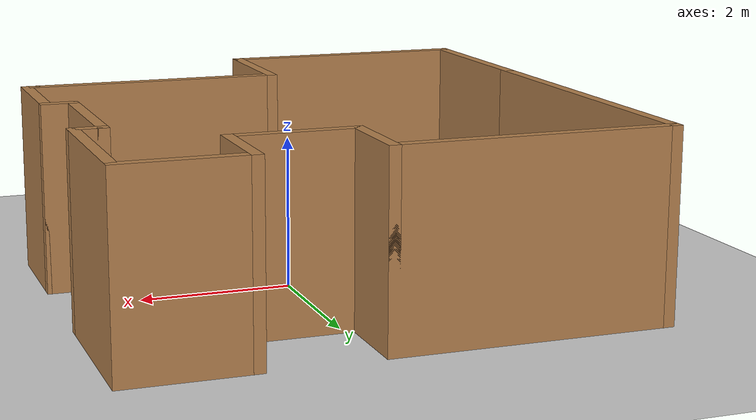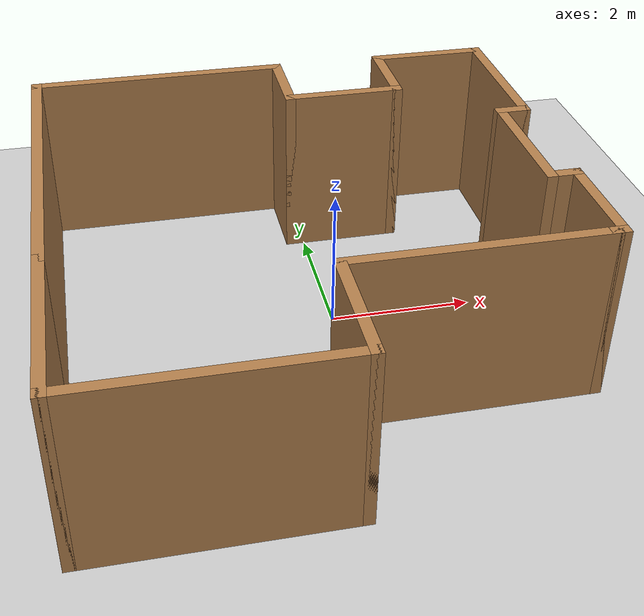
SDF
<sdf version="1.7">
 <world name="default">
  <light name="sun" type="directional">
   <pose>0 0 10 0 -0 0</pose>
   <diffuse>0.8 0.8 0.8 1</diffuse>
   <specular>0.2 0.2 0.2 1</specular>
   <attenuation>
    <range>1000</range>
    <constant>0.9</constant>
    <linear>0.01</linear>
    <quadratic>0.001</quadratic>
   </attenuation>
   <direction>-0.5 0.1 -0.9</direction>
   <spot><inner_angle>0</inner_angle><outer_angle>0</outer_angle><falloff>0</falloff></spot>
  </light>
  <model name="ground_plane">
   <static>1</static>
   <link name="link">
    <collision name="collision">
     <geometry><plane><normal>0 0 1</normal><size>100 100</size></plane></geometry>
     <surface><friction><ode><mu>100</mu><mu2>50</mu2></ode></friction></surface>
    </collision>
    <visual name="visual">
     <cast_shadows>0</cast_shadows>
     <geometry><plane><normal>0 0 1</normal><size>100 100</size></plane></geometry>
     <material>
      <script><uri>file://media/materials/scripts/gazebo.material</uri><name>Gazebo/Grey</name></script>
     </material>
    </visual>
   </link>
  </model>
  <gravity>0 0 -9.8</gravity>
  <magnetic_field>6e-06 2.3e-05 -4.2e-05</magnetic_field>
  <atmosphere type="adiabatic"/>
  <physics type="ode">
   <max_step_size>0.001</max_step_size>
   <real_time_factor>1</real_time_factor>
   <real_time_update_rate>1000</real_time_update_rate>
  </physics>
  <scene><ambient>0.4 0.4 0.4 1</ambient><background>0.7 0.7 0.7 1</background><shadows>1</shadows></scene>
  <spherical_coordinates>
   <surface_model>EARTH_WGS84</surface_model>
   <latitude_deg>0</latitude_deg>
   <longitude_deg>0</longitude_deg>
   <elevation>0</elevation>
   <heading_deg>0</heading_deg>
  </spherical_coordinates>
  <model name="small_building">
   <pose>-0.39971 -0.275303 0 0 -0 0</pose>
   <link name="Wall_0">
    <collision name="Wall_0_Collision">
     <geometry><box><size>4.75 0.15 2.5</size></box></geometry>
     <pose>0 0 1.25 0 -0 0</pose>
    </collision>
    <visual name="Wall_0_Visual">
     <pose>0 0 1.25 0 -0 0</pose>
     <geometry><box><size>4.75 0.15 2.5</size></box></geometry>
     <material>
      <script><uri>file://media/materials/scripts/gazebo.material</uri><name>Gazebo/Wood</name></script>
      <ambient>1 1 1 1</ambient>
     </material>
     <meta><layer>0</layer></meta>
    </visual>
    <pose>-3.4 1.175 0 0 -0 1.5708</pose>
   </link>
   <link name="Wall_1">
    <collision name="Wall_1_Collision">
     <geometry><box><size>3.75 0.15 2.5</size></box></geometry>
     <pose>0 0 1.25 0 -0 0</pose>
    </collision>
    <visual name="Wall_1_Visual">
     <pose>0 0 1.25 0 -0 0</pose>
     <geometry><box><size>3.75 0.15 2.5</size></box></geometry>
     <material>
      <script><uri>file://media/materials/scripts/gazebo.material</uri><name>Gazebo/Wood</name></script>
      <ambient>1 1 1 1</ambient>
     </material>
     <meta><layer>0</layer></meta>
    </visual>
    <pose>-1.6 3.475 0 0 -0 0</pose>
   </link>
   <link name="Wall_10">
    <collision name="Wall_10_Collision">
     <geometry><box><size>0.5 0.15 2.5</size></box></geometry>
     <pose>0 0 1.25 0 -0 0</pose>
    </collision>
    <visual name="Wall_10_Visual">
     <pose>0 0 1.25 0 -0 0</pose>
     <geometry><box><size>0.5 0.15 2.5</size></box></geometry>
     <material>
      <script><uri>file://media/materials/scripts/gazebo.material</uri><name>Gazebo/Wood</name></script>
      <ambient>1 1 1 1</ambient>
     </material>
     <meta><layer>0</layer></meta>
    </visual>
    <pose>3.225 -0.475 0 0 -0 0</pose>
   </link>
   <link name="Wall_12">
    <collision name="Wall_12_Collision">
     <geometry><box><size>2.5 0.15 2.5</size></box></geometry>
     <pose>0 0 1.25 0 -0 0</pose>
    </collision>
    <visual name="Wall_12_Visual">
     <pose>0 0 1.25 0 -0 0</pose>
     <geometry><box><size>2.5 0.15 2.5</size></box></geometry>
     <material>
      <script><uri>file://media/materials/scripts/gazebo.material</uri><name>Gazebo/Wood</name></script>
      <ambient>1 1 1 1</ambient>
     </material>
     <meta><layer>0</layer></meta>
    </visual>
    <pose>-3.4 -2.3 0 0 -0 -1.5708</pose>
   </link>
   <link name="Wall_13">
    <collision name="Wall_13_Collision">
     <geometry><box><size>3.5 0.15 2.5</size></box></geometry>
     <pose>0 0 1.25 0 -0 0</pose>
    </collision>
    <visual name="Wall_13_Visual">
     <pose>0 0 1.25 0 -0 0</pose>
     <geometry><box><size>3.5 0.15 2.5</size></box></geometry>
     <material>
      <script><uri>file://media/materials/scripts/gazebo.material</uri><name>Gazebo/Wood</name></script>
      <ambient>1 1 1 1</ambient>
     </material>
     <meta><layer>0</layer></meta>
    </visual>
    <pose>-1.725 -3.475 0 0 -0 0</pose>
   </link>
   <link name="Wall_14">
    <collision name="Wall_14_Collision">
     <geometry><box><size>1.75 0.15 2.5</size></box></geometry>
     <pose>0 0 1.25 0 -0 0</pose>
    </collision>
    <visual name="Wall_14_Visual">
     <pose>0 0 1.25 0 -0 0</pose>
     <geometry><box><size>1.75 0.15 2.5</size></box></geometry>
     <material>
      <script><uri>file://media/materials/scripts/gazebo.material</uri><name>Gazebo/Wood</name></script>
      <ambient>1 1 1 1</ambient>
     </material>
     <meta><layer>0</layer></meta>
    </visual>
    <pose>-0.05 -2.675 0 0 -0 1.5708</pose>
   </link>
   <link name="Wall_15">
    <collision name="Wall_15_Collision">
     <geometry><box><size>3.5 0.15 2.5</size></box></geometry>
     <pose>0 0 1.25 0 -0 0</pose>
    </collision>
    <visual name="Wall_15_Visual">
     <pose>0 0 1.25 0 -0 0</pose>
     <geometry><box><size>3.5 0.15 2.5</size></box></geometry>
     <material>
      <script><uri>file://media/materials/scripts/gazebo.material</uri><name>Gazebo/Wood</name></script>
      <ambient>1 1 1 1</ambient>
     </material>
     <meta><layer>0</layer></meta>
    </visual>
    <pose>1.625 -1.875 0 0 -0 0</pose>
   </link>
   <link name="Wall_16">
    <collision name="Wall_16_Collision">
     <geometry><box><size>0.25 0.15 2.5</size></box></geometry>
     <pose>0 0 1.25 0 -0 0</pose>
    </collision>
    <visual name="Wall_16_Visual">
     <pose>0 0 1.25 0 -0 0</pose>
     <geometry><box><size>0.25 0.15 2.5</size></box></geometry>
     <material>
      <script><uri>file://media/materials/scripts/gazebo.material</uri><name>Gazebo/Wood</name></script>
      <ambient>1 1 1 1</ambient>
     </material>
     <meta><layer>0</layer></meta>
    </visual>
    <pose>3.35 -1.875 0 0 -0 0</pose>
   </link>
   <link name="Wall_17">
    <collision name="Wall_17_Collision">
     <geometry><box><size>1.55 0.15 2.5</size></box></geometry>
     <pose>0 0 1.25 0 -0 0</pose>
    </collision>
    <visual name="Wall_17_Visual">
     <pose>0 0 1.25 0 -0 0</pose>
     <geometry><box><size>1.55 0.15 2.5</size></box></geometry>
     <material>
      <script><uri>file://media/materials/scripts/gazebo.material</uri><name>Gazebo/Wood</name></script>
      <ambient>1 1 1 1</ambient>
     </material>
     <meta><layer>0</layer></meta>
    </visual>
    <pose>3.4 -1.175 0 0 -0 1.5708</pose>
   </link>
   <link name="Wall_2">
    <collision name="Wall_2_Collision">
     <geometry><box><size>1.25 0.15 2.5</size></box></geometry>
     <pose>0 0 1.25 0 -0 0</pose>
    </collision>
    <visual name="Wall_2_Visual">
     <pose>0 0 1.25 0 -0 0</pose>
     <geometry><box><size>1.25 0.15 2.5</size></box></geometry>
     <material>
      <script><uri>file://media/materials/scripts/gazebo.material</uri><name>Gazebo/Wood</name></script>
      <ambient>1 1 1 1</ambient>
     </material>
     <meta><layer>0</layer></meta>
    </visual>
    <pose>0.2 2.925 0 0 -0 -1.5708</pose>
   </link>
   <link name="Wall_3">
    <collision name="Wall_3_Collision">
     <geometry><box><size>1.75 0.15 2.5</size></box></geometry>
     <pose>0 0 1.25 0 -0 0</pose>
    </collision>
    <visual name="Wall_3_Visual">
     <pose>0 0 1.25 0 -0 0</pose>
     <geometry><box><size>1.75 0.15 2.5</size></box></geometry>
     <material>
      <script><uri>file://media/materials/scripts/gazebo.material</uri><name>Gazebo/Wood</name></script>
      <ambient>1 1 1 1</ambient>
     </material>
     <meta><layer>0</layer></meta>
    </visual>
    <pose>1 2.375 0 0 -0 0</pose>
   </link>
   <link name="Wall_4">
    <collision name="Wall_4_Collision">
     <geometry><box><size>1.25 0.15 2.5</size></box></geometry>
     <pose>0 0 1.25 0 -0 0</pose>
    </collision>
    <visual name="Wall_4_Visual">
     <pose>0 0 1.25 0 -0 0</pose>
     <geometry><box><size>1.25 0.15 2.5</size></box></geometry>
     <material>
      <script><uri>file://media/materials/scripts/gazebo.material</uri><name>Gazebo/Wood</name></script>
      <ambient>1 1 1 1</ambient>
     </material>
     <meta><layer>0</layer></meta>
    </visual>
    <pose>1.8 2.925 0 0 -0 1.5708</pose>
   </link>
   <link name="Wall_5">
    <collision name="Wall_5_Collision">
     <geometry><box><size>1.75 0.15 2.5</size></box></geometry>
     <pose>0 0 1.25 0 -0 0</pose>
    </collision>
    <visual name="Wall_5_Visual">
     <pose>0 0 1.25 0 -0 0</pose>
     <geometry><box><size>1.75 0.15 2.5</size></box></geometry>
     <material>
      <script><uri>file://media/materials/scripts/gazebo.material</uri><name>Gazebo/Wood</name></script>
      <ambient>1 1 1 1</ambient>
     </material>
     <meta><layer>0</layer></meta>
    </visual>
    <pose>2.6 3.475 0 0 -0 0</pose>
   </link>
   <link name="Wall_7">
    <collision name="Wall_7_Collision">
     <geometry><box><size>2.25 0.15 2.5</size></box></geometry>
     <pose>0 0 1.25 0 -0 0</pose>
    </collision>
    <visual name="Wall_7_Visual">
     <pose>0 0 1.25 0 -0 0</pose>
     <geometry><box><size>2.25 0.15 2.5</size></box></geometry>
     <material>
      <script><uri>file://media/materials/scripts/gazebo.material</uri><name>Gazebo/Wood</name></script>
      <ambient>1 1 1 1</ambient>
     </material>
     <meta><layer>0</layer></meta>
    </visual>
    <pose>3.4 2.425 0 0 -0 -1.5708</pose>
   </link>
   <link name="Wall_8">
    <collision name="Wall_8_Collision">
     <geometry><box><size>0.5 0.15 2.5</size></box></geometry>
     <pose>0 0 1.25 0 -0 0</pose>
    </collision>
    <visual name="Wall_8_Visual">
     <pose>0 0 1.25 0 -0 0</pose>
     <geometry><box><size>0.5 0.15 2.5</size></box></geometry>
     <material>
      <script><uri>file://media/materials/scripts/gazebo.material</uri><name>Gazebo/Wood</name></script>
      <ambient>1 1 1 1</ambient>
     </material>
     <meta><layer>0</layer></meta>
    </visual>
    <pose>3.225 1.375 0 0 -0 3.14159</pose>
   </link>
   <link name="Wall_9">
    <collision name="Wall_9_Collision">
     <geometry><box><size>2 0.15 2.5</size></box></geometry>
     <pose>0 0 1.25 0 -0 0</pose>
    </collision>
    <visual name="Wall_9_Visual">
     <pose>0 0 1.25 0 -0 0</pose>
     <geometry><box><size>2 0.15 2.5</size></box></geometry>
     <material>
      <script><uri>file://media/materials/scripts/gazebo.material</uri><name>Gazebo/Wood</name></script>
      <ambient>1 1 1 1</ambient>
     </material>
     <meta><layer>0</layer></meta>
    </visual>
    <pose>3.05 0.45 0 0 -0 -1.5708</pose>
   </link>
   <static>1</static>
  </model>
 </world>
</sdf>
